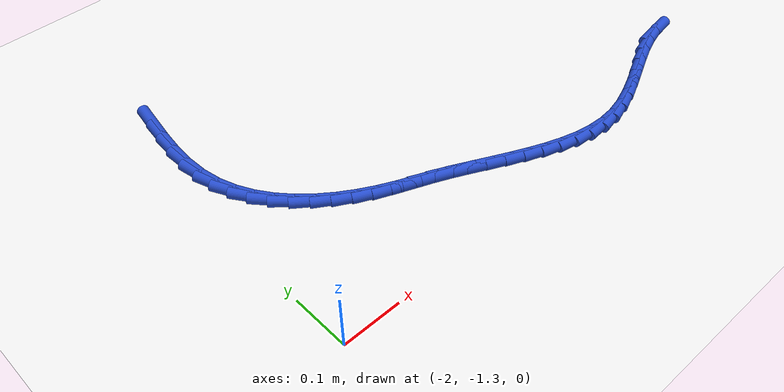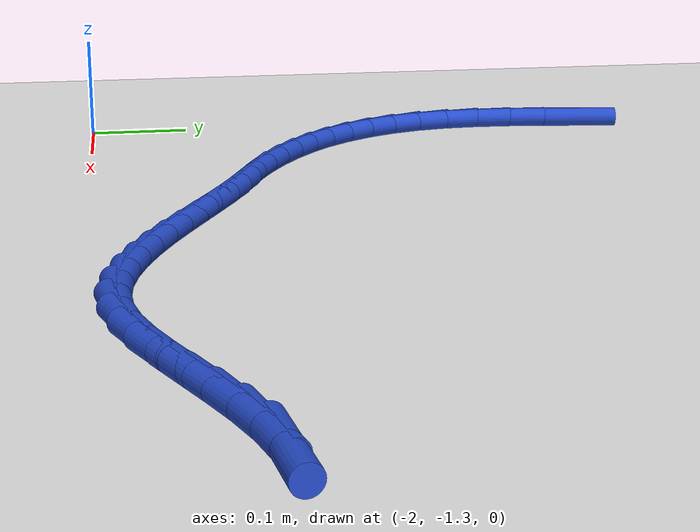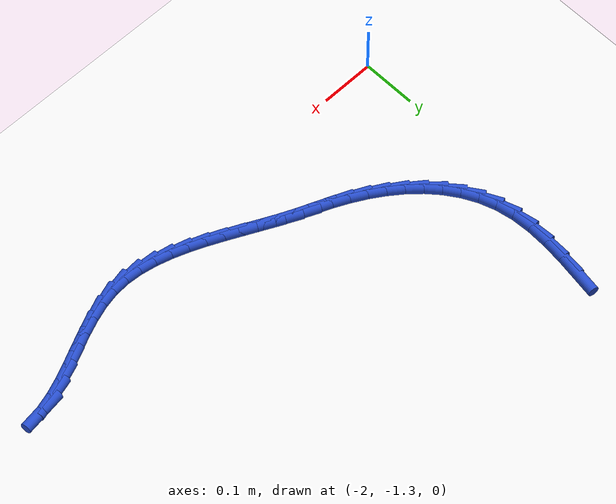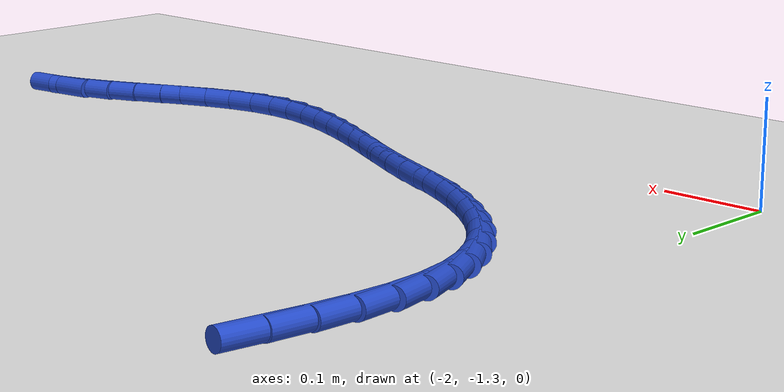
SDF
<sdf version="1.6">
 <world name="default">
  <model name="ground_plane">
   <static>1</static>
   <link name="link">
    <collision name="collision">
     <geometry><plane><normal>0 0 1</normal><size>100 100</size></plane></geometry>
     <surface><friction><ode><mu>100</mu><mu2>50</mu2></ode></friction></surface>
    </collision>
    <visual name="visual">
     <cast_shadows>0</cast_shadows>
     <geometry><plane><normal>0 0 1</normal><size>100 100</size></plane></geometry>
     <material>
      <script><uri>file://media/materials/scripts/gazebo.material</uri><name>Gazebo/WhiteGlow</name></script>
     </material>
    </visual>
   </link>
  </model>
  <model name="line">
   <link name="link_184">
    <pose>-1.951059893809382 -0.7657303261609067 0.01 0 1.57 1.4169809765432813</pose>
    <collision name="collision">
     <geometry><cylinder><radius>0.01</radius><length>0.08</length></cylinder></geometry>
    </collision>
    <visual name="visual">
     <material>
      <script><name>Gazebo/Blue</name><uri>file://media/materials/scripts/gazebo.material</uri></script>
     </material>
     <geometry><cylinder><radius>0.01</radius><length>0.08</length></cylinder></geometry>
    </visual>
   </link>
   <link name="link_185">
    <pose>-1.9570635782869976 -0.804453784112791 0.01 0 1.57 1.4619659895195258</pose>
    <collision name="collision">
     <geometry><cylinder><radius>0.01</radius><length>0.08</length></cylinder></geometry>
    </collision>
    <visual name="visual">
     <material>
      <script><name>Gazebo/Blue</name><uri>file://media/materials/scripts/gazebo.material</uri></script>
     </material>
     <geometry><cylinder><radius>0.01</radius><length>0.08</length></cylinder></geometry>
    </visual>
   </link>
   <link name="link_186">
    <pose>-1.9612738322291958 -0.8429873287615599 0.01 0 1.57 1.531069185427516</pose>
    <collision name="collision">
     <geometry><cylinder><radius>0.01</radius><length>0.08</length></cylinder></geometry>
    </collision>
    <visual name="visual">
     <material>
      <script><name>Gazebo/Blue</name><uri>file://media/materials/scripts/gazebo.material</uri></script>
     </material>
     <geometry><cylinder><radius>0.01</radius><length>0.08</length></cylinder></geometry>
    </visual>
   </link>
   <link name="link_187">
    <pose>-1.9627662224339946 -0.8805335742585664 0.01 0 1.57 -1.5107507841108068</pose>
    <collision name="collision">
     <geometry><cylinder><radius>0.01</radius><length>0.08</length></cylinder></geometry>
    </collision>
    <visual name="visual">
     <material>
      <script><name>Gazebo/Blue</name><uri>file://media/materials/scripts/gazebo.material</uri></script>
     </material>
     <geometry><cylinder><radius>0.01</radius><length>0.08</length></cylinder></geometry>
    </visual>
   </link>
   <link name="link_188">
    <pose>-1.9606163156994092 -0.9162951347551622 0.01 0 1.57 -1.376859144750162</pose>
    <collision name="collision">
     <geometry><cylinder><radius>0.01</radius><length>0.08</length></cylinder></geometry>
    </collision>
    <visual name="visual">
     <material>
      <script><name>Gazebo/Blue</name><uri>file://media/materials/scripts/gazebo.material</uri></script>
     </material>
     <geometry><cylinder><radius>0.01</radius><length>0.08</length></cylinder></geometry>
    </visual>
   </link>
   <link name="link_189">
    <pose>-1.9540773902951238 -0.9495880760832184 0.01 0 1.57 -1.2339719058376355</pose>
    <collision name="collision">
     <geometry><cylinder><radius>0.01</radius><length>0.08</length></cylinder></geometry>
    </collision>
    <visual name="visual">
     <material>
      <script><name>Gazebo/Blue</name><uri>file://media/materials/scripts/gazebo.material</uri></script>
     </material>
     <geometry><cylinder><radius>0.01</radius><length>0.08</length></cylinder></geometry>
    </visual>
   </link>
   <link name="link_190">
    <pose>-1.9433184775593686 -0.9803130843222031 0.01 0 1.57 -1.0960805090185635</pose>
    <collision name="collision">
     <geometry><cylinder><radius>0.01</radius><length>0.08</length></cylinder></geometry>
    </collision>
    <visual name="visual">
     <material>
      <script><name>Gazebo/Blue</name><uri>file://media/materials/scripts/gazebo.material</uri></script>
     </material>
     <geometry><cylinder><radius>0.01</radius><length>0.08</length></cylinder></geometry>
    </visual>
   </link>
   <link name="link_191">
    <pose>-1.92880273589234 -1.0085586173884458 0.01 0 1.57 -0.9676103962463373</pose>
    <collision name="collision">
     <geometry><cylinder><radius>0.01</radius><length>0.08</length></cylinder></geometry>
    </collision>
    <visual name="visual">
     <material>
      <script><name>Gazebo/Blue</name><uri>file://media/materials/scripts/gazebo.material</uri></script>
     </material>
     <geometry><cylinder><radius>0.01</radius><length>0.08</length></cylinder></geometry>
    </visual>
   </link>
   <link name="link_192">
    <pose>-1.9109934612083173 -1.0344132209877892 0.01 0 1.57 -0.8512136698056152</pose>
    <collision name="collision">
     <geometry><cylinder><radius>0.01</radius><length>0.08</length></cylinder></geometry>
    </collision>
    <visual name="visual">
     <material>
      <script><name>Gazebo/Blue</name><uri>file://media/materials/scripts/gazebo.material</uri></script>
     </material>
     <geometry><cylinder><radius>0.01</radius><length>0.08</length></cylinder></geometry>
    </visual>
   </link>
   <link name="link_193">
    <pose>-1.8903539494215806 -1.057965440826077 0.01 0 1.57 -0.7477999827060005</pose>
    <collision name="collision">
     <geometry><cylinder><radius>0.01</radius><length>0.08</length></cylinder></geometry>
    </collision>
    <visual name="visual">
     <material>
      <script><name>Gazebo/Blue</name><uri>file://media/materials/scripts/gazebo.material</uri></script>
     </material>
     <geometry><cylinder><radius>0.01</radius><length>0.08</length></cylinder></geometry>
    </visual>
   </link>
   <link name="link_194">
    <pose>-1.8673474964464076 -1.0793038226091518 0.01 0 1.57 -0.6569925813411946</pose>
    <collision name="collision">
     <geometry><cylinder><radius>0.01</radius><length>0.08</length></cylinder></geometry>
    </collision>
    <visual name="visual">
     <material>
      <script><name>Gazebo/Blue</name><uri>file://media/materials/scripts/gazebo.material</uri></script>
     </material>
     <geometry><cylinder><radius>0.01</radius><length>0.08</length></cylinder></geometry>
    </visual>
   </link>
   <link name="link_195">
    <pose>-1.842437398197078 -1.0985169120428566 0.01 0 1.57 -0.5776694156050801</pose>
    <collision name="collision">
     <geometry><cylinder><radius>0.01</radius><length>0.08</length></cylinder></geometry>
    </collision>
    <visual name="visual">
     <material>
      <script><name>Gazebo/Blue</name><uri>file://media/materials/scripts/gazebo.material</uri></script>
     </material>
     <geometry><cylinder><radius>0.01</radius><length>0.08</length></cylinder></geometry>
    </visual>
   </link>
   <link name="link_196">
    <pose>-1.8160869505878716 -1.1156932548330352 0.01 0 1.57 -0.5083893655393146</pose>
    <collision name="collision">
     <geometry><cylinder><radius>0.01</radius><length>0.08</length></cylinder></geometry>
    </collision>
    <visual name="visual">
     <material>
      <script><name>Gazebo/Blue</name><uri>file://media/materials/scripts/gazebo.material</uri></script>
     </material>
     <geometry><cylinder><radius>0.01</radius><length>0.08</length></cylinder></geometry>
    </visual>
   </link>
   <link name="link_197">
    <pose>-1.7887594495330663 -1.13092139668553 0.01 0 1.57 -0.4476566580114068</pose>
    <collision name="collision">
     <geometry><cylinder><radius>0.01</radius><length>0.08</length></cylinder></geometry>
    </collision>
    <visual name="visual">
     <material>
      <script><name>Gazebo/Blue</name><uri>file://media/materials/scripts/gazebo.material</uri></script>
     </material>
     <geometry><cylinder><radius>0.01</radius><length>0.08</length></cylinder></geometry>
    </visual>
   </link>
   <link name="link_198">
    <pose>-1.7609181909469416 -1.144289883306184 0.01 0 1.57 -0.39817449462644355</pose>
    <collision name="collision">
     <geometry><cylinder><radius>0.01</radius><length>0.08</length></cylinder></geometry>
    </collision>
    <visual name="visual">
     <material>
      <script><name>Gazebo/Blue</name><uri>file://media/materials/scripts/gazebo.material</uri></script>
     </material>
     <geometry><cylinder><radius>0.01</radius><length>0.08</length></cylinder></geometry>
    </visual>
   </link>
   <link name="link_199">
    <pose>-1.7329708432387598 -1.1560457409950322 0.01 0 1.57 -0.38776606119203527</pose>
    <collision name="collision">
     <geometry><cylinder><radius>0.01</radius><length>0.08</length></cylinder></geometry>
    </collision>
    <visual name="visual">
     <material>
      <script><name>Gazebo/Blue</name><uri>file://media/materials/scripts/gazebo.material</uri></script>
     </material>
     <geometry><cylinder><radius>0.01</radius><length>0.08</length></cylinder></geometry>
    </visual>
   </link>
   <link name="link_200">
    <pose>-1.7049556667728623 -1.1674884251776099 0.01 0 1.57 -0.41949929893364324</pose>
    <collision name="collision">
     <geometry><cylinder><radius>0.01</radius><length>0.08</length></cylinder></geometry>
    </collision>
    <visual name="visual">
     <material>
      <script><name>Gazebo/Blue</name><uri>file://media/materials/scripts/gazebo.material</uri></script>
     </material>
     <geometry><cylinder><radius>0.01</radius><length>0.08</length></cylinder></geometry>
    </visual>
   </link>
   <link name="link_201">
    <pose>-1.6767772264234972 -1.1800552241301303 0.01 0 1.57 -0.4478951594371902</pose>
    <collision name="collision">
     <geometry><cylinder><radius>0.01</radius><length>0.08</length></cylinder></geometry>
    </collision>
    <visual name="visual">
     <material>
      <script><name>Gazebo/Blue</name><uri>file://media/materials/scripts/gazebo.material</uri></script>
     </material>
     <geometry><cylinder><radius>0.01</radius><length>0.08</length></cylinder></geometry>
    </visual>
   </link>
   <link name="link_202">
    <pose>-1.6484269715240367 -1.1936764360754648 0.01 0 1.57 -0.45992665492611645</pose>
    <collision name="collision">
     <geometry><cylinder><radius>0.01</radius><length>0.08</length></cylinder></geometry>
    </collision>
    <visual name="visual">
     <material>
      <script><name>Gazebo/Blue</name><uri>file://media/materials/scripts/gazebo.material</uri></script>
     </material>
     <geometry><cylinder><radius>0.01</radius><length>0.08</length></cylinder></geometry>
    </visual>
   </link>
   <link name="link_203">
    <pose>-1.6199245504035629 -1.2077953219620092 0.01 0 1.57 -0.45641696373852986</pose>
    <collision name="collision">
     <geometry><cylinder><radius>0.01</radius><length>0.08</length></cylinder></geometry>
    </collision>
    <visual name="visual">
     <material>
      <script><name>Gazebo/Blue</name><uri>file://media/materials/scripts/gazebo.material</uri></script>
     </material>
     <geometry><cylinder><radius>0.01</radius><length>0.08</length></cylinder></geometry>
    </visual>
   </link>
   <link name="link_204">
    <pose>-1.5912896253830238 -1.2218549010785238 0.01 0 1.57 -0.4374171708692262</pose>
    <collision name="collision">
     <geometry><cylinder><radius>0.01</radius><length>0.08</length></cylinder></geometry>
    </collision>
    <visual name="visual">
     <material>
      <script><name>Gazebo/Blue</name><uri>file://media/materials/scripts/gazebo.material</uri></script>
     </material>
     <geometry><cylinder><radius>0.01</radius><length>0.08</length></cylinder></geometry>
    </visual>
   </link>
   <link name="link_205">
    <pose>-1.5625418587833662 -1.2352981927137676 0.01 0 1.57 -0.4022412594208801</pose>
    <collision name="collision">
     <geometry><cylinder><radius>0.01</radius><length>0.08</length></cylinder></geometry>
    </collision>
    <visual name="visual">
     <material>
      <script><name>Gazebo/Blue</name><uri>file://media/materials/scripts/gazebo.material</uri></script>
     </material>
     <geometry><cylinder><radius>0.01</radius><length>0.08</length></cylinder></geometry>
    </visual>
   </link>
   <link name="link_206">
    <pose>-1.5337009129255372 -1.2475682161565018 0.01 0 1.57 -0.3495473905100099</pose>
    <collision name="collision">
     <geometry><cylinder><radius>0.01</radius><length>0.08</length></cylinder></geometry>
    </collision>
    <visual name="visual">
     <material>
      <script><name>Gazebo/Blue</name><uri>file://media/materials/scripts/gazebo.material</uri></script>
     </material>
     <geometry><cylinder><radius>0.01</radius><length>0.08</length></cylinder></geometry>
    </visual>
   </link>
   <link name="link_207">
    <pose>-1.504786450130484 -1.2581079906954848 0.01 0 1.57 -0.277529785912471</pose>
    <collision name="collision">
     <geometry><cylinder><radius>0.01</radius><length>0.08</length></cylinder></geometry>
    </collision>
    <visual name="visual">
     <material>
      <script><name>Gazebo/Blue</name><uri>file://media/materials/scripts/gazebo.material</uri></script>
     </material>
     <geometry><cylinder><radius>0.01</radius><length>0.08</length></cylinder></geometry>
    </visual>
   </link>
   <link name="link_208">
    <pose>-1.4758181327191537 -1.2663605356194767 0.01 0 1.57 -0.18436062998558153</pose>
    <collision name="collision">
     <geometry><cylinder><radius>0.01</radius><length>0.08</length></cylinder></geometry>
    </collision>
    <visual name="visual">
     <material>
      <script><name>Gazebo/Blue</name><uri>file://media/materials/scripts/gazebo.material</uri></script>
     </material>
     <geometry><cylinder><radius>0.01</radius><length>0.08</length></cylinder></geometry>
    </visual>
   </link>
   <link name="link_209">
    <pose>-1.446815623012493 -1.2717688702172372 0.01 0 1.57 -0.06906119912549136</pose>
    <collision name="collision">
     <geometry><cylinder><radius>0.01</radius><length>0.08</length></cylinder></geometry>
    </collision>
    <visual name="visual">
     <material>
      <script><name>Gazebo/Blue</name><uri>file://media/materials/scripts/gazebo.material</uri></script>
     </material>
     <geometry><cylinder><radius>0.01</radius><length>0.08</length></cylinder></geometry>
    </visual>
   </link>
   <link name="link_210">
    <pose>-1.4177985833314493 -1.2737760137775265 0.01 0 1.57 0.06714768431519785</pose>
    <collision name="collision">
     <geometry><cylinder><radius>0.01</radius><length>0.08</length></cylinder></geometry>
    </collision>
    <visual name="visual">
     <material>
      <script><name>Gazebo/Blue</name><uri>file://media/materials/scripts/gazebo.material</uri></script>
     </material>
     <geometry><cylinder><radius>0.01</radius><length>0.08</length></cylinder></geometry>
    </visual>
   </link>
   <link name="link_211">
    <pose>-1.3887866760632543 -1.2718249982513699 0.01 0 1.57 0.2096553223402561</pose>
    <collision name="collision">
     <geometry><cylinder><radius>0.01</radius><length>0.08</length></cylinder></geometry>
    </collision>
    <visual name="visual">
     <material>
      <script><name>Gazebo/Blue</name><uri>file://media/materials/scripts/gazebo.material</uri></script>
     </material>
     <geometry><cylinder><radius>0.01</radius><length>0.08</length></cylinder></geometry>
    </visual>
   </link>
   <link name="link_212">
    <pose>-1.3598011263679042 -1.2656573911153426 0.01 0 1.57 0.319474105697339</pose>
    <collision name="collision">
     <geometry><cylinder><radius>0.01</radius><length>0.08</length></cylinder></geometry>
    </collision>
    <visual name="visual">
     <material>
      <script><name>Gazebo/Blue</name><uri>file://media/materials/scripts/gazebo.material</uri></script>
     </material>
     <geometry><cylinder><radius>0.01</radius><length>0.08</length></cylinder></geometry>
    </visual>
   </link>
   <link name="link_213">
    <pose>-1.330868769212371 -1.2560863978416936 0.01 0 1.57 0.39182012531062826</pose>
    <collision name="collision">
     <geometry><cylinder><radius>0.01</radius><length>0.08</length></cylinder></geometry>
    </collision>
    <visual name="visual">
     <material>
      <script><name>Gazebo/Blue</name><uri>file://media/materials/scripts/gazebo.material</uri></script>
     </material>
     <geometry><cylinder><radius>0.01</radius><length>0.08</length></cylinder></geometry>
    </visual>
   </link>
   <link name="link_214">
    <pose>-1.3020176978402003 -1.2441655917068022 0.01 0 1.57 0.4310200567136236</pose>
    <collision name="collision">
     <geometry><cylinder><radius>0.01</radius><length>0.08</length></cylinder></geometry>
    </collision>
    <visual name="visual">
     <material>
      <script><name>Gazebo/Blue</name><uri>file://media/materials/scripts/gazebo.material</uri></script>
     </material>
     <geometry><cylinder><radius>0.01</radius><length>0.08</length></cylinder></geometry>
    </visual>
   </link>
   <link name="link_215">
    <pose>-1.2732760054949364 -1.230948545987047 0.01 0 1.57 0.4398111725352747</pose>
    <collision name="collision">
     <geometry><cylinder><radius>0.01</radius><length>0.08</length></cylinder></geometry>
    </collision>
    <visual name="visual">
     <material>
      <script><name>Gazebo/Blue</name><uri>file://media/materials/scripts/gazebo.material</uri></script>
     </material>
     <geometry><cylinder><radius>0.01</radius><length>0.08</length></cylinder></geometry>
    </visual>
   </link>
   <link name="link_216">
    <pose>-1.2446717854201255 -1.2174888339588077 0.01 0 1.57 0.4185003993866651</pose>
    <collision name="collision">
     <geometry><cylinder><radius>0.01</radius><length>0.08</length></cylinder></geometry>
    </collision>
    <visual name="visual">
     <material>
      <script><name>Gazebo/Blue</name><uri>file://media/materials/scripts/gazebo.material</uri></script>
     </material>
     <geometry><cylinder><radius>0.01</radius><length>0.08</length></cylinder></geometry>
    </visual>
   </link>
   <link name="link_217">
    <pose>-1.2162331308593102 -1.2048400288984615 0.01 0 1.57 0.3647308551631957</pose>
    <collision name="collision">
     <geometry><cylinder><radius>0.01</radius><length>0.08</length></cylinder></geometry>
    </collision>
    <visual name="visual">
     <material>
      <script><name>Gazebo/Blue</name><uri>file://media/materials/scripts/gazebo.material</uri></script>
     </material>
     <geometry><cylinder><radius>0.01</radius><length>0.08</length></cylinder></geometry>
    </visual>
   </link>
   <link name="link_218">
    <pose>-1.187988135056037 -1.1940557040823891 0.01 0 1.57 0.2736625494082447</pose>
    <collision name="collision">
     <geometry><cylinder><radius>0.01</radius><length>0.08</length></cylinder></geometry>
    </collision>
    <visual name="visual">
     <material>
      <script><name>Gazebo/Blue</name><uri>file://media/materials/scripts/gazebo.material</uri></script>
     </material>
     <geometry><cylinder><radius>0.01</radius><length>0.08</length></cylinder></geometry>
    </visual>
   </link>
   <link name="link_219">
    <pose>-1.1599648912538505 -1.1861894327869689 0.01 0 1.57 0.1394637699281366</pose>
    <collision name="collision">
     <geometry><cylinder><radius>0.01</radius><length>0.08</length></cylinder></geometry>
    </collision>
    <visual name="visual">
     <material>
      <script><name>Gazebo/Blue</name><uri>file://media/materials/scripts/gazebo.material</uri></script>
     </material>
     <geometry><cylinder><radius>0.01</radius><length>0.08</length></cylinder></geometry>
    </visual>
   </link>
  </model>
 </world>
</sdf>
